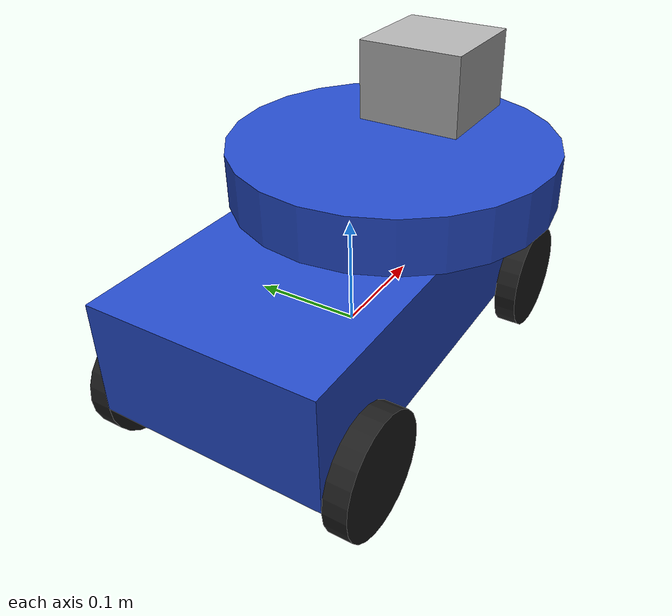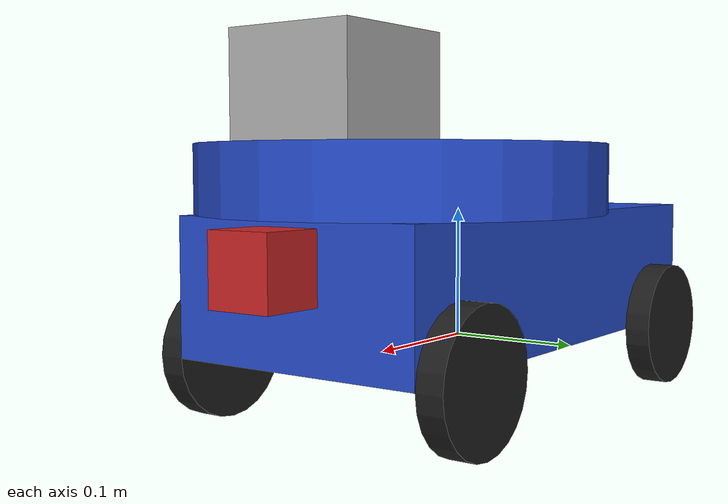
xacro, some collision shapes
<?xml version="1.0"?>

<robot name="my_robot" xmlns:xacro="http://www.ros.org/wiki/xacro">

<xacro:include filename="$(find my_robot)/urdf/my_robot.gazebo" />

  <!--Links-->
  <link name="robot_footprint"></link>

  <joint name="robot_footprint_joint" type="fixed">
    <origin xyz="0 0 0" rpy="0 0 0" />
    <parent link="robot_footprint" />
    <child link="chassis" />
  </joint>

  <link name="chassis">
    <pose>0 0 0.1 0 0 0</pose>
    <inertial>
      <mass value="5.0" />
      <origin xyz="0 0 0" rpy="0 0 0" />
      <inertia
        ixx="0.1" ixy="0" ixz="0"
        iyy="0.1" iyz="0"
        izz="0.1" />
    </inertial>
    <collision name="box_collision">
      <origin xyz="0 0 0.05" rpy="0 0 0" />
      <geometry>
        <box size=".4 .2 .1" />
      </geometry>
    </collision>
    <visual name="box_visual">
      <origin xyz="0 0 0.05" rpy="0 0 0" />
      <geometry>
        <box size=".4 .2 .1" />
      </geometry>
    </visual>

    <collision name="cylinder_colllision">
      <origin xyz="0.075 0 0.125" rpy="0 0 0" />
      <geometry>
        <cylinder radius=".15" length=".05" />
      </geometry>
    </collision>

    <visual name="cylinder_visual">
      <origin xyz="0.075 0 0.125" rpy="0 0 0" />
      <geometry>
        <cylinder radius=".15" length=".05" />
      </geometry>
    </visual>

  </link>

  <link name="front_wheel_left">

    <inertial>
      <mass value="1.0" />
      <origin xyz="0 0.01 0" rpy="0 1.5707 1.5707" />
      <inertia
        ixx="0.1" ixy="0" ixz="0"
        iyy="0.1" iyz="0"
        izz="0.1" />
    </inertial>

    <collision name="front_wheel_left_collision">
      <origin xyz="0 0.01 0" rpy="0 1.5707 1.5707" />
      <geometry>
        <cylinder radius="0.05" length="0.02" />
      </geometry>
    </collision>

    <visual name="front_wheel_left_visual">
      <origin xyz="0 0.01 0" rpy="0 1.5707 1.5707" />
      <geometry>
        <cylinder radius="0.05" length="0.02" />
      </geometry>
    </visual>

  </link>

  <link name="front_wheel_right">

    <inertial>
      <mass value="1.0" />
      <origin xyz="0 -0.01 0" rpy="0 1.5707 1.5707" />
      <inertia
        ixx="0.1" ixy="0" ixz="0"
        iyy="0.1" iyz="0"
        izz="0.1" />
    </inertial>

    <collision name="front_wheel_right_collision">
      <origin xyz="0 -0.01 0" rpy="0 1.5707 1.5707" />
      <geometry>
        <cylinder radius="0.05" length="0.02" />
      </geometry>
    </collision>

    <visual name="front_wheel_right_visual">
      <origin xyz="0 -0.01 0" rpy="0 1.5707 1.5707" />
      <geometry>
        <cylinder radius="0.05" length="0.02" />
      </geometry>
    </visual>

  </link>

  <link name="rear_wheel_left">

    <inertial>
      <mass value="1.0" />
      <origin xyz="0 0.01 0" rpy="0 1.5707 1.5707" />
      <inertia
        ixx="0.1" ixy="0" ixz="0"
        iyy="0.1" iyz="0"
        izz="0.1" />
    </inertial>

    <collision name="rear_wheel_left_collision">
      <origin xyz="0 0.01 0" rpy="0 1.5707 1.5707" />
      <geometry>
        <cylinder radius="0.05" length="0.02" />
      </geometry>
    </collision>

    <visual name="rear_wheel_left_visual">
      <origin xyz="0 0.01 0" rpy="0 1.5707 1.5707" />
      <geometry>
        <cylinder radius="0.05" length="0.02" />
      </geometry>
    </visual>

  </link>

  <link name="rear_wheel_right">

    <inertial>
      <mass value="1.0" />
      <origin xyz="0 -0.01 0" rpy="0 1.5707 1.5707" />
      <inertia
        ixx="0.1" ixy="0" ixz="0"
        iyy="0.1" iyz="0"
        izz="0.1" />
    </inertial>

    <collision name="rear_wheel_right_collision">
      <origin xyz="0 -0.01 0" rpy="0 1.5707 1.5707" />
      <geometry>
        <cylinder radius="0.05" length="0.02" />
      </geometry>
    </collision>

    <visual name="rear_wheel_right_visual">
      <origin xyz="0 -0.01 0" rpy="0 1.5707 1.5707" />
      <geometry>
        <cylinder radius="0.05" length="0.02" />
      </geometry>
    </visual>

  </link>

  <link name="camera">

    <box_inertia m="0.1" x="0.05" y="0.05" z="0.05" />
   <inertial>
      <mass value="0.1"/>
      <inertia
	ixx="1e-6" ixy="0" ixz="0"
        iyy="1e-6" iyz="0"
        izz="1e-6" />
    </inertial>

    <collision name="camera_collision">
      <origin xyz="0 0 0" rpy="0 0 0" />
      <geometry>
        <box size="0.05 0.05 0.05" />
      </geometry>
    </collision>

    <visual name="camera_visual">
      <origin xyz="0 0 0" rpy="0 0 0" />
      <geometry>
        <box size="0.05 0.05 0.05" />
      </geometry>
    </visual>

  </link>

  <link name="hokuyo">

    <inertial>
      <mass value="1e-5" />
      <inertia
        ixx="1e-6" ixy="0" ixz="0"
        iyy="1e-6" iyz="0"
        izz="1e-6"
      />
    </inertial>

    <collision name="hokuyo_collision">
      <origin xyz="0 0 0" rpy="0 0 0" />
      <geometry>
        <box size="0.1 0.1 0.1" />
      </geometry>
    </collision>

    <visual name="hokuyo_visual">
      <origin xyz="0 0 0" rpy="0 0 0" />
      <geometry>
        <mesh filename="package://my_robot/meshes/hokuyo.dae" />
      </geometry>
    </visual>

  </link>

  <!--Colors-->
  <gazebo reference="chassis">
    <material>Gazebo/Blue</material>
  </gazebo>

  <gazebo reference="camera">
    <material>Gazebo/Red</material>
  </gazebo>

  <gazebo reference="front_wheel_right">
    <material>Gazebo/Black</material>
  </gazebo>

  <gazebo reference="rear_wheel_left">
    <material>Gazebo/Black</material>
  </gazebo>

  <gazebo reference="rear_wheel_right">
    <material>Gazebo/Black</material>
  </gazebo>

  <gazebo reference="front_wheel_left">
    <material>Gazebo/Black</material>
  </gazebo>

  <!--Joints-->
  <joint type="continuous" name="joint_front_wheel_left">
    <origin xyz=".15 0.1 0" rpy="0 0 0" />
    <child link="front_wheel_left" />
    <parent link="chassis" />
    <axis xyz="0 1 0" rpy="0 0 0" />
    <limit effort="10000" velocity="1000" />
    <dynamics damping="1.0" friction="1.0" />
  </joint>

  <joint type="continuous" name="joint_front_wheel_right">
    <origin xyz=".15 -0.1 0" rpy="0 0 0" />
    <child link="front_wheel_right" />
    <parent link="chassis" />
    <axis xyz="0 1 0" rpy="0 0 0" />
    <limit effort="10000" velocity="1000" />
    <dynamics damping="1.0" friction="1.0" />
  </joint>

  <joint type="continuous" name="joint_rear_wheel_left">
    <origin xyz="-0.15 0.1 0" rpy="0 0 0" />
    <child link="rear_wheel_left" />
    <parent link="chassis" />
    <axis xyz="0 1 0" rpy="0 0 0" />
    <limit effort="10000" velocity="1000" />
    <dynamics damping="1.0" friction="1.0" />
  </joint>

  <joint type="continuous" name="joint_rear_wheel_right">
    <origin xyz="-0.15 -0.1 0" rpy="0 0 0" />
    <child link="rear_wheel_right" />
    <parent link="chassis" />
    <axis xyz="0 1 0" rpy="0 0 0" />
    <limit effort="10000" velocity="1000" />
    <dynamics damping="1.0" friction="1.0" />
  </joint>

  <joint type="fixed" name="camera_joint">
    <origin xyz="0.22 0 0.07" rpy="0 0 0" />
    <axis xyz="0 1 0" rpy="0 0 0" />
    <parent link="chassis" />
    <child link="camera" />
  </joint>

  <joint name="hokuyo_fixed" type="fixed">
    <origin xyz="0.15 0 0.175" rpy="0 0 0"/>
    <axis xyz="0 1 0" rpy="0 0 0"/>
    <parent link="chassis" />
    <child link="hokuyo" />
  </joint>

</robot>
